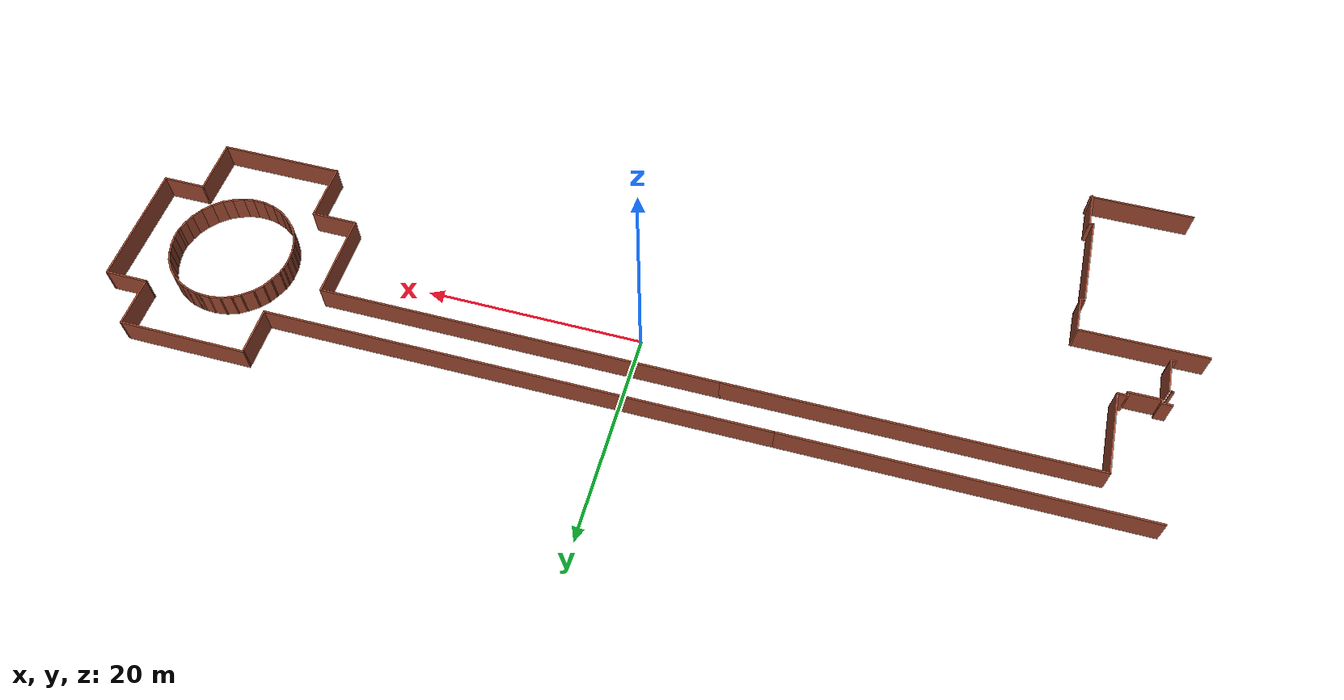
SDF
<sdf version="1.7">
 <model name="TD1modelado">
  <pose>-6.73237 -9.45588 0 0 -0 0</pose>
  <link name="Wall_133">
   <collision name="Wall_133_Collision">
    <geometry><box><size>0.936535 0.15 2.5</size></box></geometry>
    <pose>0 0 1.25 0 -0 0</pose>
   </collision>
   <visual name="Wall_133_Visual">
    <pose>0 0 1.25 0 -0 0</pose>
    <geometry><box><size>0.936535 0.15 2.5</size></box></geometry>
    <material>
     <script><uri>file://media/materials/scripts/gazebo.material</uri><name>Gazebo/Bricks</name></script>
     <ambient>1 1 1 1</ambient>
    </material>
    <meta><layer>0</layer></meta>
   </visual>
   <pose>39.3862 10.8872 0 0 -0 -1.55157</pose>
  </link>
  <link name="Wall_134">
   <collision name="Wall_134_Collision">
    <geometry><box><size>0.836552 0.15 2.5</size></box></geometry>
    <pose>0 0 1.25 0 -0 0</pose>
   </collision>
   <visual name="Wall_134_Visual">
    <pose>0 0 1.25 0 -0 0</pose>
    <geometry><box><size>0.836552 0.15 2.5</size></box></geometry>
    <material>
     <script><uri>file://media/materials/scripts/gazebo.material</uri><name>Gazebo/Bricks</name></script>
     <ambient>1 1 1 1</ambient>
    </material>
    <meta><layer>0</layer></meta>
   </visual>
   <pose>39.4392 10.1538 0 0 -0 -1.43824</pose>
  </link>
  <link name="Wall_135">
   <collision name="Wall_135_Collision">
    <geometry><box><size>0.949798 0.15 2.5</size></box></geometry>
    <pose>0 0 1.25 0 -0 0</pose>
   </collision>
   <visual name="Wall_135_Visual">
    <pose>0 0 1.25 0 -0 0</pose>
    <geometry><box><size>0.949798 0.15 2.5</size></box></geometry>
    <material>
     <script><uri>file://media/materials/scripts/gazebo.material</uri><name>Gazebo/Bricks</name></script>
     <ambient>1 1 1 1</ambient>
    </material>
    <meta><layer>0</layer></meta>
   </visual>
   <pose>39.5904 9.42789 0 0 -0 -1.30289</pose>
  </link>
  <link name="Wall_136">
   <collision name="Wall_136_Collision">
    <geometry><box><size>1.1788 0.15 2.5</size></box></geometry>
    <pose>0 0 1.25 0 -0 0</pose>
   </collision>
   <visual name="Wall_136_Visual">
    <pose>0 0 1.25 0 -0 0</pose>
    <geometry><box><size>1.1788 0.15 2.5</size></box></geometry>
    <material>
     <script><uri>file://media/materials/scripts/gazebo.material</uri><name>Gazebo/Bricks</name></script>
     <ambient>1 1 1 1</ambient>
    </material>
    <meta><layer>0</layer></meta>
   </visual>
   <pose>39.908 8.57345 0 0 -0 -1.1466</pose>
  </link>
  <link name="Wall_137">
   <collision name="Wall_137_Collision">
    <geometry><box><size>1.08542 0.15 2.5</size></box></geometry>
    <pose>0 0 1.25 0 -0 0</pose>
   </collision>
   <visual name="Wall_137_Visual">
    <pose>0 0 1.25 0 -0 0</pose>
    <geometry><box><size>1.08542 0.15 2.5</size></box></geometry>
    <material>
     <script><uri>file://media/materials/scripts/gazebo.material</uri><name>Gazebo/Bricks</name></script>
     <ambient>1 1 1 1</ambient>
    </material>
    <meta><layer>0</layer></meta>
   </visual>
   <pose>40.3843 7.71901 0 0 -0 -0.969342</pose>
  </link>
  <link name="Wall_138">
   <collision name="Wall_138_Collision">
    <geometry><box><size>1.28432 0.15 2.5</size></box></geometry>
    <pose>0 0 1.25 0 -0 0</pose>
   </collision>
   <visual name="Wall_138_Visual">
    <pose>0 0 1.25 0 -0 0</pose>
    <geometry><box><size>1.28432 0.15 2.5</size></box></geometry>
    <material>
     <script><uri>file://media/materials/scripts/gazebo.material</uri><name>Gazebo/Bricks</name></script>
     <ambient>1 1 1 1</ambient>
    </material>
    <meta><layer>0</layer></meta>
   </visual>
   <pose>41.0649 6.94774 0 0 -0 -0.74768</pose>
  </link>
  <link name="Wall_139">
   <collision name="Wall_139_Collision">
    <geometry><box><size>1.19446 0.15 2.5</size></box></geometry>
    <pose>0 0 1.25 0 -0 0</pose>
   </collision>
   <visual name="Wall_139_Visual">
    <pose>0 0 1.25 0 -0 0</pose>
    <geometry><box><size>1.19446 0.15 2.5</size></box></geometry>
    <material>
     <script><uri>file://media/materials/scripts/gazebo.material</uri><name>Gazebo/Bricks</name></script>
     <ambient>1 1 1 1</ambient>
    </material>
    <meta><layer>0</layer></meta>
   </visual>
   <pose>41.9118 6.26721 0 0 -0 -0.60005</pose>
  </link>
  <link name="Wall_140">
   <collision name="Wall_140_Collision">
    <geometry><box><size>1.18069 0.15 2.5</size></box></geometry>
    <pose>0 0 1.25 0 -0 0</pose>
   </collision>
   <visual name="Wall_140_Visual">
    <pose>0 0 1.25 0 -0 0</pose>
    <geometry><box><size>1.18069 0.15 2.5</size></box></geometry>
    <material>
     <script><uri>file://media/materials/scripts/gazebo.material</uri><name>Gazebo/Bricks</name></script>
     <ambient>1 1 1 1</ambient>
    </material>
    <meta><layer>0</layer></meta>
   </visual>
   <pose>42.8191 5.77572 0 0 -0 -0.391405</pose>
  </link>
  <link name="Wall_141">
   <collision name="Wall_141_Collision">
    <geometry><box><size>1.21785 0.15 2.5</size></box></geometry>
    <pose>0 0 1.25 0 -0 0</pose>
   </collision>
   <visual name="Wall_141_Visual">
    <pose>0 0 1.25 0 -0 0</pose>
    <geometry><box><size>1.21785 0.15 2.5</size></box></geometry>
    <material>
     <script><uri>file://media/materials/scripts/gazebo.material</uri><name>Gazebo/Bricks</name></script>
     <ambient>1 1 1 1</ambient>
    </material>
    <meta><layer>0</layer></meta>
   </visual>
   <pose>43.8172 5.4657 0 0 -0 -0.214061</pose>
  </link>
  <link name="Wall_142">
   <collision name="Wall_142_Collision">
    <geometry><box><size>1.22383 0.15 2.5</size></box></geometry>
    <pose>0 0 1.25 0 -0 0</pose>
   </collision>
   <visual name="Wall_142_Visual">
    <pose>0 0 1.25 0 -0 0</pose>
    <geometry><box><size>1.22383 0.15 2.5</size></box></geometry>
    <material>
     <script><uri>file://media/materials/scripts/gazebo.material</uri><name>Gazebo/Bricks</name></script>
     <ambient>1 1 1 1</ambient>
    </material>
    <meta><layer>0</layer></meta>
   </visual>
   <pose>44.8758 5.34471 0 0 -0 -0.014084</pose>
  </link>
  <link name="Wall_143">
   <collision name="Wall_143_Collision">
    <geometry><box><size>1.06989 0.15 2.5</size></box></geometry>
    <pose>0 0 1.25 0 -0 0</pose>
   </collision>
   <visual name="Wall_143_Visual">
    <pose>0 0 1.25 0 -0 0</pose>
    <geometry><box><size>1.06989 0.15 2.5</size></box></geometry>
    <material>
     <script><uri>file://media/materials/scripts/gazebo.material</uri><name>Gazebo/Bricks</name></script>
     <ambient>1 1 1 1</ambient>
    </material>
    <meta><layer>0</layer></meta>
   </visual>
   <pose>45.8664 5.41277 0 0 -0 0.165149</pose>
  </link>
  <link name="Wall_144">
   <collision name="Wall_144_Collision">
    <geometry><box><size>1.19785 0.15 2.5</size></box></geometry>
    <pose>0 0 1.25 0 -0 0</pose>
   </collision>
   <visual name="Wall_144_Visual">
    <pose>0 0 1.25 0 -0 0</pose>
    <geometry><box><size>1.19785 0.15 2.5</size></box></geometry>
    <material>
     <script><uri>file://media/materials/scripts/gazebo.material</uri><name>Gazebo/Bricks</name></script>
     <ambient>1 1 1 1</ambient>
    </material>
    <meta><layer>0</layer></meta>
   </visual>
   <pose>46.8116 5.66986 0 0 -0 0.353703</pose>
  </link>
  <link name="Wall_145">
   <collision name="Wall_145_Collision">
    <geometry><box><size>1.04315 0.15 2.5</size></box></geometry>
    <pose>0 0 1.25 0 -0 0</pose>
   </collision>
   <visual name="Wall_145_Visual">
    <pose>0 0 1.25 0 -0 0</pose>
    <geometry><box><size>1.04315 0.15 2.5</size></box></geometry>
    <material>
     <script><uri>file://media/materials/scripts/gazebo.material</uri><name>Gazebo/Bricks</name></script>
     <ambient>1 1 1 1</ambient>
    </material>
    <meta><layer>0</layer></meta>
   </visual>
   <pose>47.6963 6.06305 0 0 -0 0.493941</pose>
  </link>
  <link name="Wall_146">
   <collision name="Wall_146_Collision">
    <geometry><box><size>1.17043 0.15 2.5</size></box></geometry>
    <pose>0 0 1.25 0 -0 0</pose>
   </collision>
   <visual name="Wall_146_Visual">
    <pose>0 0 1.25 0 -0 0</pose>
    <geometry><box><size>1.17043 0.15 2.5</size></box></geometry>
    <material>
     <script><uri>file://media/materials/scripts/gazebo.material</uri><name>Gazebo/Bricks</name></script>
     <ambient>1 1 1 1</ambient>
    </material>
    <meta><layer>0</layer></meta>
   </visual>
   <pose>48.4826 6.59991 0 0 -0 0.690943</pose>
  </link>
  <link name="Wall_147">
   <collision name="Wall_147_Collision">
    <geometry><box><size>1.19172 0.15 2.5</size></box></geometry>
    <pose>0 0 1.25 0 -0 0</pose>
   </collision>
   <visual name="Wall_147_Visual">
    <pose>0 0 1.25 0 -0 0</pose>
    <geometry><box><size>1.19172 0.15 2.5</size></box></geometry>
    <material>
     <script><uri>file://media/materials/scripts/gazebo.material</uri><name>Gazebo/Bricks</name></script>
     <ambient>1 1 1 1</ambient>
    </material>
    <meta><layer>0</layer></meta>
   </visual>
   <pose>49.2085 7.32581 0 0 -0 0.877917</pose>
  </link>
  <link name="Wall_148">
   <collision name="Wall_148_Collision">
    <geometry><box><size>1.17233 0.15 2.5</size></box></geometry>
    <pose>0 0 1.25 0 -0 0</pose>
   </collision>
   <visual name="Wall_148_Visual">
    <pose>0 0 1.25 0 -0 0</pose>
    <geometry><box><size>1.17233 0.15 2.5</size></box></geometry>
    <material>
     <script><uri>file://media/materials/scripts/gazebo.material</uri><name>Gazebo/Bricks</name></script>
     <ambient>1 1 1 1</ambient>
    </material>
    <meta><layer>0</layer></meta>
   </visual>
   <pose>49.7908 8.17269 0 0 -0 1.06082</pose>
  </link>
  <link name="Wall_149">
   <collision name="Wall_149_Collision">
    <geometry><box><size>0.98217 0.15 2.5</size></box></geometry>
    <pose>0 0 1.25 0 -0 0</pose>
   </collision>
   <visual name="Wall_149_Visual">
    <pose>0 0 1.25 0 -0 0</pose>
    <geometry><box><size>0.98217 0.15 2.5</size></box></geometry>
    <material>
     <script><uri>file://media/materials/scripts/gazebo.material</uri><name>Gazebo/Bricks</name></script>
     <ambient>1 1 1 1</ambient>
    </material>
    <meta><layer>0</layer></meta>
   </visual>
   <pose>50.1764 9.01201 0 0 -0 1.23755</pose>
  </link>
  <link name="Wall_150">
   <collision name="Wall_150_Collision">
    <geometry><box><size>0.960592 0.15 2.5</size></box></geometry>
    <pose>0 0 1.25 0 -0 0</pose>
   </collision>
   <visual name="Wall_150_Visual">
    <pose>0 0 1.25 0 -0 0</pose>
    <geometry><box><size>0.960592 0.15 2.5</size></box></geometry>
    <material>
     <script><uri>file://media/materials/scripts/gazebo.material</uri><name>Gazebo/Bricks</name></script>
     <ambient>1 1 1 1</ambient>
    </material>
    <meta><layer>0</layer></meta>
   </visual>
   <pose>50.4108 9.7984 0 0 -0 1.32582</pose>
  </link>
  <link name="Wall_151">
   <collision name="Wall_151_Collision">
    <geometry><box><size>0.499139 0.15 2.5</size></box></geometry>
    <pose>0 0 1.25 0 -0 0</pose>
   </collision>
   <visual name="Wall_151_Visual">
    <pose>0 0 1.25 0 -0 0</pose>
    <geometry><box><size>0.499139 0.15 2.5</size></box></geometry>
    <material>
     <script><uri>file://media/materials/scripts/gazebo.material</uri><name>Gazebo/Bricks</name></script>
     <ambient>1 1 1 1</ambient>
    </material>
    <meta><layer>0</layer></meta>
   </visual>
   <pose>50.5242 10.3655 0 0 -0 1.48406</pose>
  </link>
  <link name="Wall_152">
   <collision name="Wall_152_Collision">
    <geometry><box><size>0.891175 0.15 2.5</size></box></geometry>
    <pose>0 0 1.25 0 -0 0</pose>
   </collision>
   <visual name="Wall_152_Visual">
    <pose>0 0 1.25 0 -0 0</pose>
    <geometry><box><size>0.891175 0.15 2.5</size></box></geometry>
    <material>
     <script><uri>file://media/materials/scripts/gazebo.material</uri><name>Gazebo/Bricks</name></script>
     <ambient>1 1 1 1</ambient>
    </material>
    <meta><layer>0</layer></meta>
   </visual>
   <pose>50.5318 10.9099 0 0 -0 1.5912</pose>
  </link>
  <link name="Wall_154">
   <collision name="Wall_154_Collision">
    <geometry><box><size>1.00775 0.15 2.5</size></box></geometry>
    <pose>0 0 1.25 0 -0 0</pose>
   </collision>
   <visual name="Wall_154_Visual">
    <pose>0 0 1.25 0 -0 0</pose>
    <geometry><box><size>1.00775 0.15 2.5</size></box></geometry>
    <material>
     <script><uri>file://media/materials/scripts/gazebo.material</uri><name>Gazebo/Bricks</name></script>
     <ambient>1 1 1 1</ambient>
    </material>
    <meta><layer>0</layer></meta>
   </visual>
   <pose>50.4562 11.7039 0 0 -0 1.73015</pose>
  </link>
  <link name="Wall_155">
   <collision name="Wall_155_Collision">
    <geometry><box><size>1.02058 0.15 2.5</size></box></geometry>
    <pose>0 0 1.25 0 -0 0</pose>
   </collision>
   <visual name="Wall_155_Visual">
    <pose>0 0 1.25 0 -0 0</pose>
    <geometry><box><size>1.02058 0.15 2.5</size></box></geometry>
    <material>
     <script><uri>file://media/materials/scripts/gazebo.material</uri><name>Gazebo/Bricks</name></script>
     <ambient>1 1 1 1</ambient>
    </material>
    <meta><layer>0</layer></meta>
   </visual>
   <pose>50.2596 12.5432 0 0 -0 1.87057</pose>
  </link>
  <link name="Wall_156">
   <collision name="Wall_156_Collision">
    <geometry><box><size>0.970128 0.15 2.5</size></box></geometry>
    <pose>0 0 1.25 0 -0 0</pose>
   </collision>
   <visual name="Wall_156_Visual">
    <pose>0 0 1.25 0 -0 0</pose>
    <geometry><box><size>0.970128 0.15 2.5</size></box></geometry>
    <material>
     <script><uri>file://media/materials/scripts/gazebo.material</uri><name>Gazebo/Bricks</name></script>
     <ambient>1 1 1 1</ambient>
    </material>
    <meta><layer>0</layer></meta>
   </visual>
   <pose>49.9722 13.3372 0 0 -0 1.96842</pose>
  </link>
  <link name="Wall_157">
   <collision name="Wall_157_Collision">
    <geometry><box><size>1.24523 0.15 2.5</size></box></geometry>
    <pose>0 0 1.25 0 -0 0</pose>
   </collision>
   <visual name="Wall_157_Visual">
    <pose>0 0 1.25 0 -0 0</pose>
    <geometry><box><size>1.24523 0.15 2.5</size></box></geometry>
    <material>
     <script><uri>file://media/materials/scripts/gazebo.material</uri><name>Gazebo/Bricks</name></script>
     <ambient>1 1 1 1</ambient>
    </material>
    <meta><layer>0</layer></meta>
   </visual>
   <pose>49.4959 14.1613 0 0 -0 2.18944</pose>
  </link>
  <link name="Wall_158">
   <collision name="Wall_158_Collision">
    <geometry><box><size>1.16639 0.15 2.5</size></box></geometry>
    <pose>0 0 1.25 0 -0 0</pose>
   </collision>
   <visual name="Wall_158_Visual">
    <pose>0 0 1.25 0 -0 0</pose>
    <geometry><box><size>1.16639 0.15 2.5</size></box></geometry>
    <material>
     <script><uri>file://media/materials/scripts/gazebo.material</uri><name>Gazebo/Bricks</name></script>
     <ambient>1 1 1 1</ambient>
    </material>
    <meta><layer>0</layer></meta>
   </visual>
   <pose>48.8078 14.9553 0 0 -0 2.38776</pose>
  </link>
  <link name="Wall_159">
   <collision name="Wall_159_Collision">
    <geometry><box><size>1.33789 0.15 2.5</size></box></geometry>
    <pose>0 0 1.25 0 -0 0</pose>
   </collision>
   <visual name="Wall_159_Visual">
    <pose>0 0 1.25 0 -0 0</pose>
    <geometry><box><size>1.33789 0.15 2.5</size></box></geometry>
    <material>
     <script><uri>file://media/materials/scripts/gazebo.material</uri><name>Gazebo/Bricks</name></script>
     <ambient>1 1 1 1</ambient>
    </material>
    <meta><layer>0</layer></meta>
   </visual>
   <pose>47.9307 15.6131 0 0 -0 2.59244</pose>
  </link>
  <link name="Wall_160">
   <collision name="Wall_160_Collision">
    <geometry><box><size>0.964392 0.15 2.5</size></box></geometry>
    <pose>0 0 1.25 0 -0 0</pose>
   </collision>
   <visual name="Wall_160_Visual">
    <pose>0 0 1.25 0 -0 0</pose>
    <geometry><box><size>0.964392 0.15 2.5</size></box></geometry>
    <material>
     <script><uri>file://media/materials/scripts/gazebo.material</uri><name>Gazebo/Bricks</name></script>
     <ambient>1 1 1 1</ambient>
    </material>
    <meta><layer>0</layer></meta>
   </visual>
   <pose>47.046 16.0744 0 0 -0 2.76109</pose>
  </link>
  <link name="Wall_161">
   <collision name="Wall_161_Collision">
    <geometry><box><size>1.0194 0.15 2.5</size></box></geometry>
    <pose>0 0 1.25 0 -0 0</pose>
   </collision>
   <visual name="Wall_161_Visual">
    <pose>0 0 1.25 0 -0 0</pose>
    <geometry><box><size>1.0194 0.15 2.5</size></box></geometry>
    <material>
     <script><uri>file://media/materials/scripts/gazebo.material</uri><name>Gazebo/Bricks</name></script>
     <ambient>1 1 1 1</ambient>
    </material>
    <meta><layer>0</layer></meta>
   </visual>
   <pose>46.2445 16.3239 0 0 -0 2.91349</pose>
  </link>
  <link name="Wall_162">
   <collision name="Wall_162_Collision">
    <geometry><box><size>0.56083 0.15 2.5</size></box></geometry>
    <pose>0 0 1.25 0 -0 0</pose>
   </collision>
   <visual name="Wall_162_Visual">
    <pose>0 0 1.25 0 -0 0</pose>
    <geometry><box><size>0.56083 0.15 2.5</size></box></geometry>
    <material>
     <script><uri>file://media/materials/scripts/gazebo.material</uri><name>Gazebo/Bricks</name></script>
     <ambient>1 1 1 1</ambient>
    </material>
    <meta><layer>0</layer></meta>
   </visual>
   <pose>45.6169 16.4449 0 0 -0 3.03093</pose>
  </link>
  <link name="Wall_163">
   <collision name="Wall_163_Collision">
    <geometry><box><size>1.08872 0.15 2.5</size></box></geometry>
    <pose>0 0 1.25 0 -0 0</pose>
   </collision>
   <visual name="Wall_163_Visual">
    <pose>0 0 1.25 0 -0 0</pose>
    <geometry><box><size>1.08872 0.15 2.5</size></box></geometry>
    <material>
     <script><uri>file://media/materials/scripts/gazebo.material</uri><name>Gazebo/Bricks</name></script>
     <ambient>1 1 1 1</ambient>
    </material>
    <meta><layer>0</layer></meta>
   </visual>
   <pose>44.9439 16.4827 0 0 -0 3.10935</pose>
  </link>
  <link name="Wall_164">
   <collision name="Wall_164_Collision">
    <geometry><box><size>1.18942 0.15 2.5</size></box></geometry>
    <pose>0 0 1.25 0 -0 0</pose>
   </collision>
   <visual name="Wall_164_Visual">
    <pose>0 0 1.25 0 -0 0</pose>
    <geometry><box><size>1.18942 0.15 2.5</size></box></geometry>
    <material>
     <script><uri>file://media/materials/scripts/gazebo.material</uri><name>Gazebo/Bricks</name></script>
     <ambient>1 1 1 1</ambient>
    </material>
    <meta><layer>0</layer></meta>
   </visual>
   <pose>43.9609 16.4222 0 0 -0 -2.99558</pose>
  </link>
  <link name="Wall_165">
   <collision name="Wall_165_Collision">
    <geometry><box><size>1.12176 0.15 2.5</size></box></geometry>
    <pose>0 0 1.25 0 -0 0</pose>
   </collision>
   <visual name="Wall_165_Visual">
    <pose>0 0 1.25 0 -0 0</pose>
    <geometry><box><size>1.12176 0.15 2.5</size></box></geometry>
    <material>
     <script><uri>file://media/materials/scripts/gazebo.material</uri><name>Gazebo/Bricks</name></script>
     <ambient>1 1 1 1</ambient>
    </material>
    <meta><layer>0</layer></meta>
   </visual>
   <pose>42.993 16.1727 0 0 -0 -2.77554</pose>
  </link>
  <link name="Wall_166">
   <collision name="Wall_166_Collision">
    <geometry><box><size>0.956632 0.15 2.5</size></box></geometry>
    <pose>0 0 1.25 0 -0 0</pose>
   </collision>
   <visual name="Wall_166_Visual">
    <pose>0 0 1.25 0 -0 0</pose>
    <geometry><box><size>0.956632 0.15 2.5</size></box></geometry>
    <material>
     <script><uri>file://media/materials/scripts/gazebo.material</uri><name>Gazebo/Bricks</name></script>
     <ambient>1 1 1 1</ambient>
    </material>
    <meta><layer>0</layer></meta>
   </visual>
   <pose>42.1915 15.7946 0 0 -0 -2.61082</pose>
  </link>
  <link name="Wall_167">
   <collision name="Wall_167_Collision">
    <geometry><box><size>1.28854 0.15 2.5</size></box></geometry>
    <pose>0 0 1.25 0 -0 0</pose>
   </collision>
   <visual name="Wall_167_Visual">
    <pose>0 0 1.25 0 -0 0</pose>
    <geometry><box><size>1.28854 0.15 2.5</size></box></geometry>
    <material>
     <script><uri>file://media/materials/scripts/gazebo.material</uri><name>Gazebo/Bricks</name></script>
     <ambient>1 1 1 1</ambient>
    </material>
    <meta><layer>0</layer></meta>
   </visual>
   <pose>41.4051 15.2275 0 0 -0 -2.45026</pose>
  </link>
  <link name="Wall_168">
   <collision name="Wall_168_Collision">
    <geometry><box><size>1.08334 0.15 2.5</size></box></geometry>
    <pose>0 0 1.25 0 -0 0</pose>
   </collision>
   <visual name="Wall_168_Visual">
    <pose>0 0 1.25 0 -0 0</pose>
    <geometry><box><size>1.08334 0.15 2.5</size></box></geometry>
    <material>
     <script><uri>file://media/materials/scripts/gazebo.material</uri><name>Gazebo/Bricks</name></script>
     <ambient>1 1 1 1</ambient>
    </material>
    <meta><layer>0</layer></meta>
   </visual>
   <pose>40.6641 14.5092 0 0 -0 -2.27591</pose>
  </link>
  <link name="Wall_169">
   <collision name="Wall_169_Collision">
    <geometry><box><size>1.01571 0.15 2.5</size></box></geometry>
    <pose>0 0 1.25 0 -0 0</pose>
   </collision>
   <visual name="Wall_169_Visual">
    <pose>0 0 1.25 0 -0 0</pose>
    <geometry><box><size>1.01571 0.15 2.5</size></box></geometry>
    <material>
     <script><uri>file://media/materials/scripts/gazebo.material</uri><name>Gazebo/Bricks</name></script>
     <ambient>1 1 1 1</ambient>
    </material>
    <meta><layer>0</layer></meta>
   </visual>
   <pose>40.1651 13.7682 0 0 -0 -2.04226</pose>
  </link>
  <link name="Wall_170">
   <collision name="Wall_170_Collision">
    <geometry><box><size>1.17267 0.15 2.5</size></box></geometry>
    <pose>0 0 1.25 0 -0 0</pose>
   </collision>
   <visual name="Wall_170_Visual">
    <pose>0 0 1.25 0 -0 0</pose>
    <geometry><box><size>1.17267 0.15 2.5</size></box></geometry>
    <material>
     <script><uri>file://media/materials/scripts/gazebo.material</uri><name>Gazebo/Bricks</name></script>
     <ambient>1 1 1 1</ambient>
    </material>
    <meta><layer>0</layer></meta>
   </visual>
   <pose>39.7643 12.9137 0 0 -0 -1.98151</pose>
  </link>
  <link name="Wall_171">
   <collision name="Wall_171_Collision">
    <geometry><box><size>0.70462 0.15 2.5</size></box></geometry>
    <pose>0 0 1.25 0 -0 0</pose>
   </collision>
   <visual name="Wall_171_Visual">
    <pose>0 0 1.25 0 -0 0</pose>
    <geometry><box><size>0.70462 0.15 2.5</size></box></geometry>
    <material>
     <script><uri>file://media/materials/scripts/gazebo.material</uri><name>Gazebo/Bricks</name></script>
     <ambient>1 1 1 1</ambient>
    </material>
    <meta><layer>0</layer></meta>
   </visual>
   <pose>39.5072 12.1727 0 0 -0 -1.76284</pose>
  </link>
  <link name="Wall_172">
   <collision name="Wall_172_Collision">
    <geometry><box><size>0.759623 0.15 2.5</size></box></geometry>
    <pose>0 0 1.25 0 -0 0</pose>
   </collision>
   <visual name="Wall_172_Visual">
    <pose>0 0 1.25 0 -0 0</pose>
    <geometry><box><size>0.759623 0.15 2.5</size></box></geometry>
    <material>
     <script><uri>file://media/materials/scripts/gazebo.material</uri><name>Gazebo/Bricks</name></script>
     <ambient>1 1 1 1</ambient>
    </material>
    <meta><layer>0</layer></meta>
   </visual>
   <pose>39.4165 11.598 0 0 -0 -1.69515</pose>
  </link>
  <link name="Wall_19">
   <collision name="Wall_19_Collision">
    <geometry><box><size>11.5 0.15 2.5</size></box></geometry>
    <pose>0 0 1.25 0 -0 0</pose>
   </collision>
   <visual name="Wall_19_Visual">
    <pose>0 0 1.25 0 -0 0</pose>
    <geometry><box><size>11.5 0.15 2.5</size></box></geometry>
    <material>
     <script><uri>file://media/materials/scripts/gazebo.material</uri><name>Gazebo/Bricks</name></script>
     <ambient>1 1 1 1</ambient>
    </material>
    <meta><layer>0</layer></meta>
   </visual>
   <pose>-35.7346 -0.329704 0 0 -0 0</pose>
  </link>
  <link name="Wall_2">
   <collision name="Wall_2_Collision">
    <geometry><box><size>9.5 0.15 2.5</size></box></geometry>
    <pose>0 0 1.25 0 -0 0</pose>
   </collision>
   <visual name="Wall_2_Visual">
    <pose>0 0 1.25 0 -0 0</pose>
    <geometry><box><size>9.5 0.15 2.5</size></box></geometry>
    <material>
     <script><uri>file://media/materials/scripts/gazebo.material</uri><name>Gazebo/Bricks</name></script>
     <ambient>1 1 1 1</ambient>
    </material>
    <meta><layer>0</layer></meta>
   </visual>
   <pose>-34.5762 -15.7635 0 0 -0 3.14159</pose>
  </link>
  <link name="Wall_20">
   <collision name="Wall_20_Collision">
    <geometry><box><size>3.5 0.15 2.5</size></box></geometry>
    <pose>0 0 1.25 0 -0 0</pose>
   </collision>
   <visual name="Wall_20_Visual">
    <pose>0 0 1.25 0 -0 0</pose>
    <geometry><box><size>3.5 0.15 2.5</size></box></geometry>
    <material>
     <script><uri>file://media/materials/scripts/gazebo.material</uri><name>Gazebo/Bricks</name></script>
     <ambient>1 1 1 1</ambient>
    </material>
    <meta><layer>0</layer></meta>
   </visual>
   <pose>-30.0596 -2.0047 0 0 -0 -1.5708</pose>
  </link>
  <link name="Wall_21">
   <collision name="Wall_21_Collision">
    <geometry><box><size>0.5 0.15 2.5</size></box></geometry>
    <pose>0 0 1.25 0 -0 0</pose>
   </collision>
   <visual name="Wall_21_Visual">
    <pose>0 0 1.25 0 -0 0</pose>
    <geometry><box><size>0.5 0.15 2.5</size></box></geometry>
    <material>
     <script><uri>file://media/materials/scripts/gazebo.material</uri><name>Gazebo/Bricks</name></script>
     <ambient>1 1 1 1</ambient>
    </material>
    <meta><layer>0</layer></meta>
   </visual>
   <pose>-30.2346 -3.6797 0 0 -0 3.14159</pose>
  </link>
  <link name="Wall_23">
   <collision name="Wall_23_Collision">
    <geometry><box><size>9 0.15 2.5</size></box></geometry>
    <pose>0 0 1.25 0 -0 0</pose>
   </collision>
   <visual name="Wall_23_Visual">
    <pose>0 0 1.25 0 -0 0</pose>
    <geometry><box><size>9 0.15 2.5</size></box></geometry>
    <material>
     <script><uri>file://media/materials/scripts/gazebo.material</uri><name>Gazebo/Bricks</name></script>
     <ambient>1 1 1 1</ambient>
    </material>
    <meta><layer>0</layer></meta>
   </visual>
   <pose>-30.4096 -8.1047 0 0 -0 -1.5708</pose>
  </link>
  <link name="Wall_24">
   <collision name="Wall_24_Collision">
    <geometry><box><size>0.5 0.15 2.5</size></box></geometry>
    <pose>0 0 1.25 0 -0 0</pose>
   </collision>
   <visual name="Wall_24_Visual">
    <pose>0 0 1.25 0 -0 0</pose>
    <geometry><box><size>0.5 0.15 2.5</size></box></geometry>
    <material>
     <script><uri>file://media/materials/scripts/gazebo.material</uri><name>Gazebo/Bricks</name></script>
     <ambient>1 1 1 1</ambient>
    </material>
    <meta><layer>0</layer></meta>
   </visual>
   <pose>-30.2346 -12.5297 0 0 -0 0</pose>
  </link>
  <link name="Wall_25">
   <collision name="Wall_25_Collision">
    <geometry><box><size>3.5 0.15 2.5</size></box></geometry>
    <pose>0 0 1.25 0 -0 0</pose>
   </collision>
   <visual name="Wall_25_Visual">
    <pose>0 0 1.25 0 -0 0</pose>
    <geometry><box><size>3.5 0.15 2.5</size></box></geometry>
    <material>
     <script><uri>file://media/materials/scripts/gazebo.material</uri><name>Gazebo/Bricks</name></script>
     <ambient>1 1 1 1</ambient>
    </material>
    <meta><layer>0</layer></meta>
   </visual>
   <pose>-30.0596 -14.2047 0 0 -0 -1.5708</pose>
  </link>
  <link name="Wall_42">
   <collision name="Wall_42_Collision">
    <geometry><box><size>0.25 0.15 2.5</size></box></geometry>
    <pose>0 0 1.25 0 -0 0</pose>
   </collision>
   <visual name="Wall_42_Visual">
    <pose>0 0 1.25 0 -0 0</pose>
    <geometry><box><size>0.25 0.15 2.5</size></box></geometry>
    <material>
     <script><uri>file://media/materials/scripts/gazebo.material</uri><name>Gazebo/Bricks</name></script>
     <ambient>1 1 1 1</ambient>
    </material>
    <meta><layer>0</layer></meta>
   </visual>
   <pose>-38.45 3.97159 0 0 -0 0</pose>
  </link>
  <link name="Wall_44">
   <collision name="Wall_44_Collision">
    <geometry><box><size>3.25 0.15 2.5</size></box></geometry>
    <pose>0 0 1.25 0 -0 0</pose>
   </collision>
   <visual name="Wall_44_Visual">
    <pose>0 0 1.25 0 -0 0</pose>
    <geometry><box><size>3.25 0.15 2.5</size></box></geometry>
    <material>
     <script><uri>file://media/materials/scripts/gazebo.material</uri><name>Gazebo/Bricks</name></script>
     <ambient>1 1 1 1</ambient>
    </material>
    <meta><layer>0</layer></meta>
   </visual>
   <pose>-38.1502 2.3374 0 0 -0 -1.5708</pose>
  </link>
  <link name="Wall_47">
   <collision name="Wall_47_Collision">
    <geometry><box><size>0.5 0.15 2.5</size></box></geometry>
    <pose>0 0 1.25 0 -0 0</pose>
   </collision>
   <visual name="Wall_47_Visual">
    <pose>0 0 1.25 0 -0 0</pose>
    <geometry><box><size>0.5 0.15 2.5</size></box></geometry>
    <material>
     <script><uri>file://media/materials/scripts/gazebo.material</uri><name>Gazebo/Bricks</name></script>
     <ambient>1 1 1 1</ambient>
    </material>
    <meta><layer>0</layer></meta>
   </visual>
   <pose>-38.3251 0.788595 0 0 -0 -0.006818</pose>
  </link>
  <link name="Wall_49">
   <collision name="Wall_49_Collision">
    <geometry><box><size>1 0.15 2.5</size></box></geometry>
    <pose>0 0 1.25 0 -0 0</pose>
   </collision>
   <visual name="Wall_49_Visual">
    <pose>0 0 1.25 0 -0 0</pose>
    <geometry><box><size>1 0.15 2.5</size></box></geometry>
    <material>
     <script><uri>file://media/materials/scripts/gazebo.material</uri><name>Gazebo/Bricks</name></script>
     <ambient>1 1 1 1</ambient>
    </material>
    <meta><layer>0</layer></meta>
   </visual>
   <pose>-38.075 5.32159 0 0 -0 0</pose>
  </link>
  <link name="Wall_50">
   <collision name="Wall_50_Collision">
    <geometry><box><size>0.5 0.15 2.5</size></box></geometry>
    <pose>0 0 1.25 0 -0 0</pose>
   </collision>
   <visual name="Wall_50_Visual">
    <pose>0 0 1.25 0 -0 0</pose>
    <geometry><box><size>0.5 0.15 2.5</size></box></geometry>
    <material>
     <script><uri>file://media/materials/scripts/gazebo.material</uri><name>Gazebo/Bricks</name></script>
     <ambient>1 1 1 1</ambient>
    </material>
    <meta><layer>0</layer></meta>
   </visual>
   <pose>-37.65 5.14659 0 0 -0 -1.5708</pose>
  </link>
  <link name="Wall_51">
   <collision name="Wall_51_Collision">
    <geometry><box><size>3 0.15 2.5</size></box></geometry>
    <pose>0 0 1.25 0 -0 0</pose>
   </collision>
   <visual name="Wall_51_Visual">
    <pose>0 0 1.25 0 -0 0</pose>
    <geometry><box><size>3 0.15 2.5</size></box></geometry>
    <material>
     <script><uri>file://media/materials/scripts/gazebo.material</uri><name>Gazebo/Bricks</name></script>
     <ambient>1 1 1 1</ambient>
    </material>
    <meta><layer>0</layer></meta>
   </visual>
   <pose>-36.225 4.97159 0 0 -0 0</pose>
  </link>
  <link name="Wall_52">
   <collision name="Wall_52_Collision">
    <geometry><box><size>0.5 0.15 2.5</size></box></geometry>
    <pose>0 0 1.25 0 -0 0</pose>
   </collision>
   <visual name="Wall_52_Visual">
    <pose>0 0 1.25 0 -0 0</pose>
    <geometry><box><size>0.5 0.15 2.5</size></box></geometry>
    <material>
     <script><uri>file://media/materials/scripts/gazebo.material</uri><name>Gazebo/Bricks</name></script>
     <ambient>1 1 1 1</ambient>
    </material>
    <meta><layer>0</layer></meta>
   </visual>
   <pose>-34.8 5.14659 0 0 -0 1.5708</pose>
  </link>
  <link name="Wall_53">
   <collision name="Wall_53_Collision">
    <geometry><box><size>1 0.15 2.5</size></box></geometry>
    <pose>0 0 1.25 0 -0 0</pose>
   </collision>
   <visual name="Wall_53_Visual">
    <pose>0 0 1.25 0 -0 0</pose>
    <geometry><box><size>1 0.15 2.5</size></box></geometry>
    <material>
     <script><uri>file://media/materials/scripts/gazebo.material</uri><name>Gazebo/Bricks</name></script>
     <ambient>1 1 1 1</ambient>
    </material>
    <meta><layer>0</layer></meta>
   </visual>
   <pose>-34.375 5.32159 0 0 -0 0</pose>
  </link>
  <link name="Wall_55">
   <collision name="Wall_55_Collision">
    <geometry><box><size>8 0.15 2.5</size></box></geometry>
    <pose>0 0 1.25 0 -0 0</pose>
   </collision>
   <visual name="Wall_55_Visual">
    <pose>0 0 1.25 0 -0 0</pose>
    <geometry><box><size>8 0.15 2.5</size></box></geometry>
    <material>
     <script><uri>file://media/materials/scripts/gazebo.material</uri><name>Gazebo/Bricks</name></script>
     <ambient>1 1 1 1</ambient>
    </material>
    <meta><layer>0</layer></meta>
   </visual>
   <pose>-33.95 9.24659 0 0 -0 1.5708</pose>
  </link>
  <link name="Wall_56">
   <collision name="Wall_56_Collision">
    <geometry><box><size>32.75 0.15 2.5</size></box></geometry>
    <pose>0 0 1.25 0 -0 0</pose>
   </collision>
   <visual name="Wall_56_Visual">
    <pose>0 0 1.25 0 -0 0</pose>
    <geometry><box><size>32.75 0.15 2.5</size></box></geometry>
    <material>
     <script><uri>file://media/materials/scripts/gazebo.material</uri><name>Gazebo/Bricks</name></script>
     <ambient>1 1 1 1</ambient>
    </material>
    <meta><layer>0</layer></meta>
   </visual>
   <pose>-17.65 13.1716 0 0 -0 0</pose>
  </link>
  <link name="Wall_57">
   <collision name="Wall_57_Collision">
    <geometry><box><size>36.75 0.15 2.5</size></box></geometry>
    <pose>0 0 1.25 0 -0 0</pose>
   </collision>
   <visual name="Wall_57_Visual">
    <pose>0 0 1.25 0 -0 0</pose>
    <geometry><box><size>36.75 0.15 2.5</size></box></geometry>
    <material>
     <script><uri>file://media/materials/scripts/gazebo.material</uri><name>Gazebo/Bricks</name></script>
     <ambient>1 1 1 1</ambient>
    </material>
    <meta><layer>0</layer></meta>
   </visual>
   <pose>16.95 13.1716 0 0 -0 0</pose>
  </link>
  <link name="Wall_58">
   <collision name="Wall_58_Collision">
    <geometry><box><size>8 0.15 2.5</size></box></geometry>
    <pose>0 0 1.25 0 -0 0</pose>
   </collision>
   <visual name="Wall_58_Visual">
    <pose>0 0 1.25 0 -0 0</pose>
    <geometry><box><size>8 0.15 2.5</size></box></geometry>
    <material>
     <script><uri>file://media/materials/scripts/gazebo.material</uri><name>Gazebo/Bricks</name></script>
     <ambient>1 1 1 1</ambient>
    </material>
    <meta><layer>0</layer></meta>
   </visual>
   <pose>35.25 9.24659 0 0 -0 -1.5708</pose>
  </link>
  <link name="Wall_59">
   <collision name="Wall_59_Collision">
    <geometry><box><size>4.25 0.15 2.5</size></box></geometry>
    <pose>0 0 1.25 0 -0 0</pose>
   </collision>
   <visual name="Wall_59_Visual">
    <pose>0 0 1.25 0 -0 0</pose>
    <geometry><box><size>4.25 0.15 2.5</size></box></geometry>
    <material>
     <script><uri>file://media/materials/scripts/gazebo.material</uri><name>Gazebo/Bricks</name></script>
     <ambient>1 1 1 1</ambient>
    </material>
    <meta><layer>0</layer></meta>
   </visual>
   <pose>37.3 5.32159 0 0 -0 0</pose>
  </link>
  <link name="Wall_60">
   <collision name="Wall_60_Collision">
    <geometry><box><size>5.5 0.15 2.5</size></box></geometry>
    <pose>0 0 1.25 0 -0 0</pose>
   </collision>
   <visual name="Wall_60_Visual">
    <pose>0 0 1.25 0 -0 0</pose>
    <geometry><box><size>5.5 0.15 2.5</size></box></geometry>
    <material>
     <script><uri>file://media/materials/scripts/gazebo.material</uri><name>Gazebo/Bricks</name></script>
     <ambient>1 1 1 1</ambient>
    </material>
    <meta><layer>0</layer></meta>
   </visual>
   <pose>39.35 2.64659 0 0 -0 -1.5708</pose>
  </link>
  <link name="Wall_61">
   <collision name="Wall_61_Collision">
    <geometry><box><size>11.5 0.15 2.5</size></box></geometry>
    <pose>0 0 1.25 0 -0 0</pose>
   </collision>
   <visual name="Wall_61_Visual">
    <pose>0 0 1.25 0 -0 0</pose>
    <geometry><box><size>11.5 0.15 2.5</size></box></geometry>
    <material>
     <script><uri>file://media/materials/scripts/gazebo.material</uri><name>Gazebo/Bricks</name></script>
     <ambient>1 1 1 1</ambient>
    </material>
    <meta><layer>0</layer></meta>
   </visual>
   <pose>45.025 -0.028412 0 0 -0 0</pose>
  </link>
  <link name="Wall_62">
   <collision name="Wall_62_Collision">
    <geometry><box><size>5.25 0.15 2.5</size></box></geometry>
    <pose>0 0 1.25 0 -0 0</pose>
   </collision>
   <visual name="Wall_62_Visual">
    <pose>0 0 1.25 0 -0 0</pose>
    <geometry><box><size>5.25 0.15 2.5</size></box></geometry>
    <material>
     <script><uri>file://media/materials/scripts/gazebo.material</uri><name>Gazebo/Bricks</name></script>
     <ambient>1 1 1 1</ambient>
    </material>
    <meta><layer>0</layer></meta>
   </visual>
   <pose>50.7 2.52159 0 0 -0 1.5708</pose>
  </link>
  <link name="Wall_63">
   <collision name="Wall_63_Collision">
    <geometry><box><size>4 0.15 2.5</size></box></geometry>
    <pose>0 0 1.25 0 -0 0</pose>
   </collision>
   <visual name="Wall_63_Visual">
    <pose>0 0 1.25 0 -0 0</pose>
    <geometry><box><size>4 0.15 2.5</size></box></geometry>
    <material>
     <script><uri>file://media/materials/scripts/gazebo.material</uri><name>Gazebo/Bricks</name></script>
     <ambient>1 1 1 1</ambient>
    </material>
    <meta><layer>0</layer></meta>
   </visual>
   <pose>52.625 5.07159 0 0 -0 0</pose>
  </link>
  <link name="Wall_64">
   <collision name="Wall_64_Collision">
    <geometry><box><size>11.5 0.15 2.5</size></box></geometry>
    <pose>0 0 1.25 0 -0 0</pose>
   </collision>
   <visual name="Wall_64_Visual">
    <pose>0 0 1.25 0 -0 0</pose>
    <geometry><box><size>11.5 0.15 2.5</size></box></geometry>
    <material>
     <script><uri>file://media/materials/scripts/gazebo.material</uri><name>Gazebo/Bricks</name></script>
     <ambient>1 1 1 1</ambient>
    </material>
    <meta><layer>0</layer></meta>
   </visual>
   <pose>54.55 10.7466 0 0 -0 1.5708</pose>
  </link>
  <link name="Wall_65">
   <collision name="Wall_65_Collision">
    <geometry><box><size>4 0.15 2.5</size></box></geometry>
    <pose>0 0 1.25 0 -0 0</pose>
   </collision>
   <visual name="Wall_65_Visual">
    <pose>0 0 1.25 0 -0 0</pose>
    <geometry><box><size>4 0.15 2.5</size></box></geometry>
    <material>
     <script><uri>file://media/materials/scripts/gazebo.material</uri><name>Gazebo/Bricks</name></script>
     <ambient>1 1 1 1</ambient>
    </material>
    <meta><layer>0</layer></meta>
   </visual>
   <pose>52.625 16.4216 0 0 -0 3.14159</pose>
  </link>
  <link name="Wall_67">
   <collision name="Wall_67_Collision">
    <geometry><box><size>4.75 0.15 2.5</size></box></geometry>
    <pose>0 0 1.25 0 -0 0</pose>
   </collision>
   <visual name="Wall_67_Visual">
    <pose>0 0 1.25 0 -0 0</pose>
    <geometry><box><size>4.75 0.15 2.5</size></box></geometry>
    <material>
     <script><uri>file://media/materials/scripts/gazebo.material</uri><name>Gazebo/Bricks</name></script>
     <ambient>1 1 1 1</ambient>
    </material>
    <meta><layer>0</layer></meta>
   </visual>
   <pose>50.7 18.7216 0 0 -0 1.5708</pose>
  </link>
  <link name="Wall_68">
   <collision name="Wall_68_Collision">
    <geometry><box><size>11.75 0.15 2.5</size></box></geometry>
    <pose>0 0 1.25 0 -0 0</pose>
   </collision>
   <visual name="Wall_68_Visual">
    <pose>0 0 1.25 0 -0 0</pose>
    <geometry><box><size>11.75 0.15 2.5</size></box></geometry>
    <material>
     <script><uri>file://media/materials/scripts/gazebo.material</uri><name>Gazebo/Bricks</name></script>
     <ambient>1 1 1 1</ambient>
    </material>
    <meta><layer>0</layer></meta>
   </visual>
   <pose>44.9 21.0216 0 0 -0 3.14159</pose>
  </link>
  <link name="Wall_69">
   <collision name="Wall_69_Collision">
    <geometry><box><size>4.5 0.15 2.5</size></box></geometry>
    <pose>0 0 1.25 0 -0 0</pose>
   </collision>
   <visual name="Wall_69_Visual">
    <pose>0 0 1.25 0 -0 0</pose>
    <geometry><box><size>4.5 0.15 2.5</size></box></geometry>
    <material>
     <script><uri>file://media/materials/scripts/gazebo.material</uri><name>Gazebo/Bricks</name></script>
     <ambient>1 1 1 1</ambient>
    </material>
    <meta><layer>0</layer></meta>
   </visual>
   <pose>39.1 18.8466 0 0 -0 -1.5708</pose>
  </link>
  <link name="Wall_70">
   <collision name="Wall_70_Collision">
    <geometry><box><size>46 0.15 2.5</size></box></geometry>
    <pose>0 0 1.25 0 -0 0</pose>
   </collision>
   <visual name="Wall_70_Visual">
    <pose>0 0 1.25 0 -0 0</pose>
    <geometry><box><size>46 0.15 2.5</size></box></geometry>
    <material>
     <script><uri>file://media/materials/scripts/gazebo.material</uri><name>Gazebo/Bricks</name></script>
     <ambient>1 1 1 1</ambient>
    </material>
    <meta><layer>0</layer></meta>
   </visual>
   <pose>16.175 16.6716 0 0 -0 3.14159</pose>
  </link>
  <link name="Wall_72">
   <collision name="Wall_72_Collision">
    <geometry><box><size>32 0.15 2.5</size></box></geometry>
    <pose>0 0 1.25 0 -0 0</pose>
   </collision>
   <visual name="Wall_72_Visual">
    <pose>0 0 1.25 0 -0 0</pose>
    <geometry><box><size>32 0.15 2.5</size></box></geometry>
    <material>
     <script><uri>file://media/materials/scripts/gazebo.material</uri><name>Gazebo/Bricks</name></script>
     <ambient>1 1 1 1</ambient>
    </material>
    <meta><layer>0</layer></meta>
   </visual>
   <pose>-22.675 16.6716 0 0 -0 3.14159</pose>
  </link>
  <static>1</static>
 </model>
</sdf>
